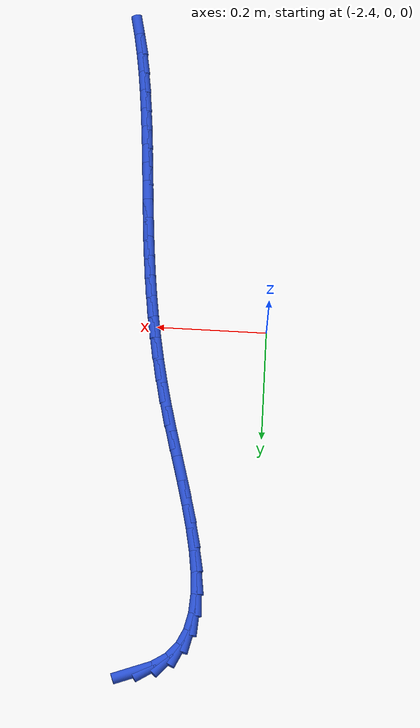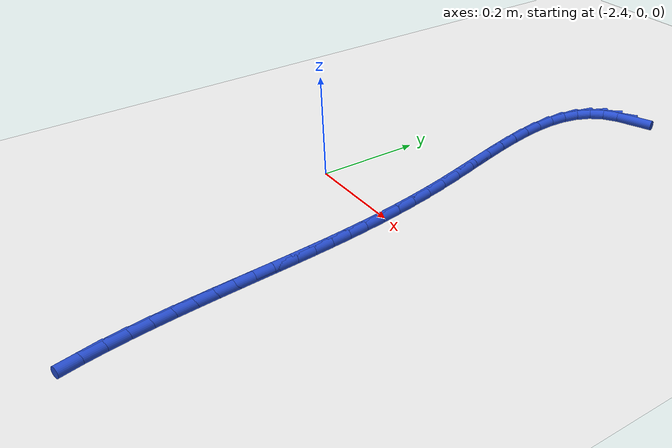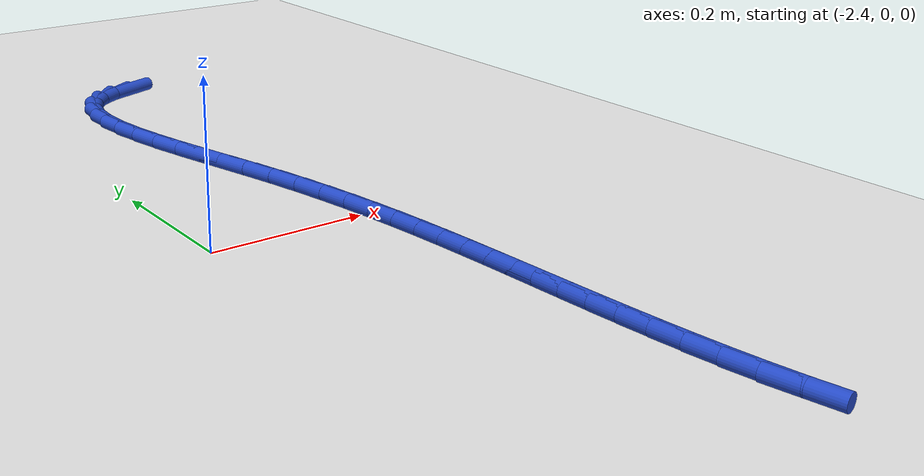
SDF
<sdf version="1.6">
 <world name="default">
  <model name="ground_plane">
   <static>1</static>
   <link name="link">
    <collision name="collision">
     <geometry><plane><normal>0 0 1</normal><size>100 100</size></plane></geometry>
     <surface><friction><ode><mu>100</mu><mu2>50</mu2></ode></friction></surface>
    </collision>
    <visual name="visual">
     <cast_shadows>0</cast_shadows>
     <geometry><plane><normal>0 0 1</normal><size>100 100</size></plane></geometry>
     <material>
      <script><uri>file://media/materials/scripts/gazebo.material</uri><name>Gazebo/WhiteGlow</name></script>
     </material>
    </visual>
   </link>
  </model>
  <model name="line">
   <link name="link_84">
    <pose>-2.195403050081484 0.6371405384322704 0.01 0 1.57 0.35546082348482233</pose>
    <collision name="collision">
     <geometry><cylinder><radius>0.01</radius><length>0.08</length></cylinder></geometry>
    </collision>
    <visual name="visual">
     <material>
      <script><name>Gazebo/Blue</name><uri>file://media/materials/scripts/gazebo.material</uri></script>
     </material>
     <geometry><cylinder><radius>0.01</radius><length>0.08</length></cylinder></geometry>
    </visual>
   </link>
   <link name="link_85">
    <pose>-2.2283322318011254 0.6249162589716156 0.01 0 1.57 0.5640835972578827</pose>
    <collision name="collision">
     <geometry><cylinder><radius>0.01</radius><length>0.08</length></cylinder></geometry>
    </collision>
    <visual name="visual">
     <material>
      <script><name>Gazebo/Blue</name><uri>file://media/materials/scripts/gazebo.material</uri></script>
     </material>
     <geometry><cylinder><radius>0.01</radius><length>0.08</length></cylinder></geometry>
    </visual>
   </link>
   <link name="link_86">
    <pose>-2.2550079262909293 0.608039803816301 0.01 0 1.57 0.8468060300490526</pose>
    <collision name="collision">
     <geometry><cylinder><radius>0.01</radius><length>0.08</length></cylinder></geometry>
    </collision>
    <visual name="visual">
     <material>
      <script><name>Gazebo/Blue</name><uri>file://media/materials/scripts/gazebo.material</uri></script>
     </material>
     <geometry><cylinder><radius>0.01</radius><length>0.08</length></cylinder></geometry>
    </visual>
   </link>
   <link name="link_87">
    <pose>-2.274632658041778 0.585843711530046 0.01 0 1.57 1.117379727034485</pose>
    <collision name="collision">
     <geometry><cylinder><radius>0.01</radius><length>0.08</length></cylinder></geometry>
    </collision>
    <visual name="visual">
     <material>
      <script><name>Gazebo/Blue</name><uri>file://media/materials/scripts/gazebo.material</uri></script>
     </material>
     <geometry><cylinder><radius>0.01</radius><length>0.08</length></cylinder></geometry>
    </visual>
   </link>
   <link name="link_88">
    <pose>-2.2878101023967323 0.5588006240981321 0.01 0 1.57 1.3370343297263783</pose>
    <collision name="collision">
     <geometry><cylinder><radius>0.01</radius><length>0.08</length></cylinder></geometry>
    </collision>
    <visual name="visual">
     <material>
      <script><name>Gazebo/Blue</name><uri>file://media/materials/scripts/gazebo.material</uri></script>
     </material>
     <geometry><cylinder><radius>0.01</radius><length>0.08</length></cylinder></geometry>
    </visual>
   </link>
   <link name="link_89">
    <pose>-2.2952671892446457 0.5274834745838252 0.01 0 1.57 1.5005585356341085</pose>
    <collision name="collision">
     <geometry><cylinder><radius>0.01</radius><length>0.08</length></cylinder></geometry>
    </collision>
    <visual name="visual">
     <material>
      <script><name>Gazebo/Blue</name><uri>file://media/materials/scripts/gazebo.material</uri></script>
     </material>
     <geometry><cylinder><radius>0.01</radius><length>0.08</length></cylinder></geometry>
    </visual>
   </link>
   <link name="link_90">
    <pose>-2.2977308484743744 0.4924651960503912 0.01 0 1.57 -1.5235705202661376</pose>
    <collision name="collision">
     <geometry><cylinder><radius>0.01</radius><length>0.08</length></cylinder></geometry>
    </collision>
    <visual name="visual">
     <material>
      <script><name>Gazebo/Blue</name><uri>file://media/materials/scripts/gazebo.material</uri></script>
     </material>
     <geometry><cylinder><radius>0.01</radius><length>0.08</length></cylinder></geometry>
    </visual>
   </link>
   <link name="link_91">
    <pose>-2.2959280099747725 0.4543187215610958 0.01 0 1.57 -1.4402849679054466</pose>
    <collision name="collision">
     <geometry><cylinder><radius>0.01</radius><length>0.08</length></cylinder></geometry>
    </collision>
    <visual name="visual">
     <material>
      <script><name>Gazebo/Blue</name><uri>file://media/materials/scripts/gazebo.material</uri></script>
     </material>
     <geometry><cylinder><radius>0.01</radius><length>0.08</length></cylinder></geometry>
    </visual>
   </link>
   <link name="link_92">
    <pose>-2.2905856036346948 0.4136169841792051 0.01 0 1.57 -1.3820154358193668</pose>
    <collision name="collision">
     <geometry><cylinder><radius>0.01</radius><length>0.08</length></cylinder></geometry>
    </collision>
    <visual name="visual">
     <material>
      <script><name>Gazebo/Blue</name><uri>file://media/materials/scripts/gazebo.material</uri></script>
     </material>
     <geometry><cylinder><radius>0.01</radius><length>0.08</length></cylinder></geometry>
    </visual>
   </link>
   <link name="link_93">
    <pose>-2.282430559342995 0.37093291696798464 0.01 0 1.57 -1.3425910610020142</pose>
    <collision name="collision">
     <geometry><cylinder><radius>0.01</radius><length>0.08</length></cylinder></geometry>
    </collision>
    <visual name="visual">
     <material>
      <script><name>Gazebo/Blue</name><uri>file://media/materials/scripts/gazebo.material</uri></script>
     </material>
     <geometry><cylinder><radius>0.01</radius><length>0.08</length></cylinder></geometry>
    </visual>
   </link>
   <link name="link_94">
    <pose>-2.27218980698853 0.3268394529907006 0.01 0 1.57 -1.3181437590275291</pose>
    <collision name="collision">
     <geometry><cylinder><radius>0.01</radius><length>0.08</length></cylinder></geometry>
    </collision>
    <visual name="visual">
     <material>
      <script><name>Gazebo/Blue</name><uri>file://media/materials/scripts/gazebo.material</uri></script>
     </material>
     <geometry><cylinder><radius>0.01</radius><length>0.08</length></cylinder></geometry>
    </visual>
   </link>
   <link name="link_95">
    <pose>-2.260590276460153 0.2819095253106185 0.01 0 1.57 -1.3064835127603138</pose>
    <collision name="collision">
     <geometry><cylinder><radius>0.01</radius><length>0.08</length></cylinder></geometry>
    </collision>
    <visual name="visual">
     <material>
      <script><name>Gazebo/Blue</name><uri>file://media/materials/scripts/gazebo.material</uri></script>
     </material>
     <geometry><cylinder><radius>0.01</radius><length>0.08</length></cylinder></geometry>
    </visual>
   </link>
   <link name="link_96">
    <pose>-2.248358897646718 0.23671606699100484 0.01 0 1.57 -1.3067190063679766</pose>
    <collision name="collision">
     <geometry><cylinder><radius>0.01</radius><length>0.08</length></cylinder></geometry>
    </collision>
    <visual name="visual">
     <material>
      <script><name>Gazebo/Blue</name><uri>file://media/materials/scripts/gazebo.material</uri></script>
     </material>
     <geometry><cylinder><radius>0.01</radius><length>0.08</length></cylinder></geometry>
    </visual>
   </link>
   <link name="link_97">
    <pose>-2.2362226004370807 0.19183201109512443 0.01 0 1.57 -1.3191146500039792</pose>
    <collision name="collision">
     <geometry><cylinder><radius>0.01</radius><length>0.08</length></cylinder></geometry>
    </collision>
    <visual name="visual">
     <material>
      <script><name>Gazebo/Blue</name><uri>file://media/materials/scripts/gazebo.material</uri></script>
     </material>
     <geometry><cylinder><radius>0.01</radius><length>0.08</length></cylinder></geometry>
    </visual>
   </link>
   <link name="link_98">
    <pose>-2.2249082474277158 0.14783023612152724 0.01 0 1.57 -1.3419312083632509</pose>
    <collision name="collision">
     <geometry><cylinder><radius>0.01</radius><length>0.08</length></cylinder></geometry>
    </collision>
    <visual name="visual">
     <material>
      <script><name>Gazebo/Blue</name><uri>file://media/materials/scripts/gazebo.material</uri></script>
     </material>
     <geometry><cylinder><radius>0.01</radius><length>0.08</length></cylinder></geometry>
    </visual>
   </link>
   <link name="link_99">
    <pose>-2.214963265777841 0.10513812350618476 0.01 0 1.57 -1.366117810865656</pose>
    <collision name="collision">
     <geometry><cylinder><radius>0.01</radius><length>0.08</length></cylinder></geometry>
    </collision>
    <visual name="visual">
     <material>
      <script><name>Gazebo/Blue</name><uri>file://media/materials/scripts/gazebo.material</uri></script>
     </material>
     <geometry><cylinder><radius>0.01</radius><length>0.08</length></cylinder></geometry>
    </visual>
   </link>
   <link name="link_100">
    <pose>-2.2063657589261183 0.06372141271364788 0.01 0 1.57 -1.3894209570700362</pose>
    <collision name="collision">
     <geometry><cylinder><radius>0.01</radius><length>0.08</length></cylinder></geometry>
    </collision>
    <visual name="visual">
     <material>
      <script><name>Gazebo/Blue</name><uri>file://media/materials/scripts/gazebo.material</uri></script>
     </material>
     <geometry><cylinder><radius>0.01</radius><length>0.08</length></cylinder></geometry>
    </visual>
   </link>
   <link name="link_101">
    <pose>-2.198981177173098 0.02345449725731922 0.01 0 1.57 -1.4114610913618018</pose>
    <collision name="collision">
     <geometry><cylinder><radius>0.01</radius><length>0.08</length></cylinder></geometry>
    </collision>
    <visual name="visual">
     <material>
      <script><name>Gazebo/Blue</name><uri>file://media/materials/scripts/gazebo.material</uri></script>
     </material>
     <geometry><cylinder><radius>0.01</radius><length>0.08</length></cylinder></geometry>
    </visual>
   </link>
   <link name="link_102">
    <pose>-2.1926749708193274 -0.015788229349398643 0.01 0 1.57 -1.4318487305813092</pose>
    <collision name="collision">
     <geometry><cylinder><radius>0.01</radius><length>0.08</length></cylinder></geometry>
    </collision>
    <visual name="visual">
     <material>
      <script><name>Gazebo/Blue</name><uri>file://media/materials/scripts/gazebo.material</uri></script>
     </material>
     <geometry><cylinder><radius>0.01</radius><length>0.08</length></cylinder></geometry>
    </visual>
   </link>
   <link name="link_103">
    <pose>-2.1873125901653556 -0.05413237359310307 0.01 0 1.57 -1.450198268976241</pose>
    <collision name="collision">
     <geometry><cylinder><radius>0.01</radius><length>0.08</length></cylinder></geometry>
    </collision>
    <visual name="visual">
     <material>
      <script><name>Gazebo/Blue</name><uri>file://media/materials/scripts/gazebo.material</uri></script>
     </material>
     <geometry><cylinder><radius>0.01</radius><length>0.08</length></cylinder></geometry>
    </visual>
   </link>
   <link name="link_104">
    <pose>-2.1827594855117303 -0.09170354196039143 0.01 0 1.57 -1.466142717057311</pose>
    <collision name="collision">
     <geometry><cylinder><radius>0.01</radius><length>0.08</length></cylinder></geometry>
    </collision>
    <visual name="visual">
     <material>
      <script><name>Gazebo/Blue</name><uri>file://media/materials/scripts/gazebo.material</uri></script>
     </material>
     <geometry><cylinder><radius>0.01</radius><length>0.08</length></cylinder></geometry>
    </visual>
   </link>
   <link name="link_105">
    <pose>-2.1788811071590004 -0.12862734093786118 0.01 0 1.57 -1.4793483906236673</pose>
    <collision name="collision">
     <geometry><cylinder><radius>0.01</radius><length>0.08</length></cylinder></geometry>
    </collision>
    <visual name="visual">
     <material>
      <script><name>Gazebo/Blue</name><uri>file://media/materials/scripts/gazebo.material</uri></script>
     </material>
     <geometry><cylinder><radius>0.01</radius><length>0.08</length></cylinder></geometry>
    </visual>
   </link>
   <link name="link_106">
    <pose>-2.175542905407715 -0.1650293770121097 0.01 0 1.57 -1.4895285998423302</pose>
    <collision name="collision">
     <geometry><cylinder><radius>0.01</radius><length>0.08</length></cylinder></geometry>
    </collision>
    <visual name="visual">
     <material>
      <script><name>Gazebo/Blue</name><uri>file://media/materials/scripts/gazebo.material</uri></script>
     </material>
     <geometry><cylinder><radius>0.01</radius><length>0.08</length></cylinder></geometry>
    </visual>
   </link>
   <link name="link_107">
    <pose>-2.1726103305584212 -0.20103525666973432 0.01 0 1.57 -1.4964555304608405</pose>
    <collision name="collision">
     <geometry><cylinder><radius>0.01</radius><length>0.08</length></cylinder></geometry>
    </collision>
    <visual name="visual">
     <material>
      <script><name>Gazebo/Blue</name><uri>file://media/materials/scripts/gazebo.material</uri></script>
     </material>
     <geometry><cylinder><radius>0.01</radius><length>0.08</length></cylinder></geometry>
    </visual>
   </link>
   <link name="link_108">
    <pose>-2.16994883291167 -0.23677058639733245 0.01 0 1.57 -1.499969710414146</pose>
    <collision name="collision">
     <geometry><cylinder><radius>0.01</radius><length>0.08</length></cylinder></geometry>
    </collision>
    <visual name="visual">
     <material>
      <script><name>Gazebo/Blue</name><uri>file://media/materials/scripts/gazebo.material</uri></script>
     </material>
     <geometry><cylinder><radius>0.01</radius><length>0.08</length></cylinder></geometry>
    </visual>
   </link>
   <link name="link_109">
    <pose>-2.167423862768007 -0.27236097268150156 0.01 0 1.57 -1.4999866596997136</pose>
    <collision name="collision">
     <geometry><cylinder><radius>0.01</radius><length>0.08</length></cylinder></geometry>
    </collision>
    <visual name="visual">
     <material>
      <script><name>Gazebo/Blue</name><uri>file://media/materials/scripts/gazebo.material</uri></script>
     </material>
     <geometry><cylinder><radius>0.01</radius><length>0.08</length></cylinder></geometry>
    </visual>
   </link>
   <link name="link_110">
    <pose>-2.164900870427983 -0.30793202200883896 0.01 0 1.57 -1.4965004885080364</pose>
    <collision name="collision">
     <geometry><cylinder><radius>0.01</radius><length>0.08</length></cylinder></geometry>
    </collision>
    <visual name="visual">
     <material>
      <script><name>Gazebo/Blue</name><uri>file://media/materials/scripts/gazebo.material</uri></script>
     </material>
     <geometry><cylinder><radius>0.01</radius><length>0.08</length></cylinder></geometry>
    </visual>
   </link>
   <link name="link_111">
    <pose>-2.162245306192145 -0.3436093408659421 0.01 0 1.57 -1.489584325312975</pose>
    <collision name="collision">
     <geometry><cylinder><radius>0.01</radius><length>0.08</length></cylinder></geometry>
    </collision>
    <visual name="visual">
     <material>
      <script><name>Gazebo/Blue</name><uri>file://media/materials/scripts/gazebo.material</uri></script>
     </material>
     <geometry><cylinder><radius>0.01</radius><length>0.08</length></cylinder></geometry>
    </visual>
   </link>
   <link name="link_112">
    <pose>-2.159322620361042 -0.3795185357394083 0.01 0 1.57 -1.4793875393986293</pose>
    <collision name="collision">
     <geometry><cylinder><radius>0.01</radius><length>0.08</length></cylinder></geometry>
    </collision>
    <visual name="visual">
     <material>
      <script><name>Gazebo/Blue</name><uri>file://media/materials/scripts/gazebo.material</uri></script>
     </material>
     <geometry><cylinder><radius>0.01</radius><length>0.08</length></cylinder></geometry>
    </visual>
   </link>
   <link name="link_113">
    <pose>-2.1559982632352233 -0.415785213115835 0.01 0 1.57 -1.466128936537959</pose>
    <collision name="collision">
     <geometry><cylinder><radius>0.01</radius><length>0.08</length></cylinder></geometry>
    </collision>
    <visual name="visual">
     <material>
      <script><name>Gazebo/Blue</name><uri>file://media/materials/scripts/gazebo.material</uri></script>
     </material>
     <geometry><cylinder><radius>0.01</radius><length>0.08</length></cylinder></geometry>
    </visual>
   </link>
   <link name="link_114">
    <pose>-2.1521376623775876 -0.4525348882114207 0.01 0 1.57 -1.4491449712321265</pose>
    <collision name="collision">
     <geometry><cylinder><radius>0.01</radius><length>0.08</length></cylinder></geometry>
    </collision>
    <visual name="visual">
     <material>
      <script><name>Gazebo/Blue</name><uri>file://media/materials/scripts/gazebo.material</uri></script>
     </material>
     <geometry><cylinder><radius>0.01</radius><length>0.08</length></cylinder></geometry>
    </visual>
   </link>
   <link name="link_115">
    <pose>-2.1475822239485702 -0.48979665277245094 0.01 0 1.57 -1.4258206984297692</pose>
    <collision name="collision">
     <geometry><cylinder><radius>0.01</radius><length>0.08</length></cylinder></geometry>
    </collision>
    <visual name="visual">
     <material>
      <script><name>Gazebo/Blue</name><uri>file://media/materials/scripts/gazebo.material</uri></script>
     </material>
     <geometry><cylinder><radius>0.01</radius><length>0.08</length></cylinder></geometry>
    </visual>
   </link>
   <link name="link_116">
    <pose>-2.142103773939076 -0.5273202992248354 0.01 0 1.57 -1.3954216941324318</pose>
    <collision name="collision">
     <geometry><cylinder><radius>0.01</radius><length>0.08</length></cylinder></geometry>
    </collision>
    <visual name="visual">
     <material>
      <script><name>Gazebo/Blue</name><uri>file://media/materials/scripts/gazebo.material</uri></script>
     </material>
     <geometry><cylinder><radius>0.01</radius><length>0.08</length></cylinder></geometry>
    </visual>
   </link>
   <link name="link_117">
    <pose>-2.135461612528407 -0.5648053405730272 0.01 0 1.57 -1.3574718193549136</pose>
    <collision name="collision">
     <geometry><cylinder><radius>0.01</radius><length>0.08</length></cylinder></geometry>
    </collision>
    <visual name="visual">
     <material>
      <script><name>Gazebo/Blue</name><uri>file://media/materials/scripts/gazebo.material</uri></script>
     </material>
     <geometry><cylinder><radius>0.01</radius><length>0.08</length></cylinder></geometry>
    </visual>
   </link>
  </model>
 </world>
</sdf>
